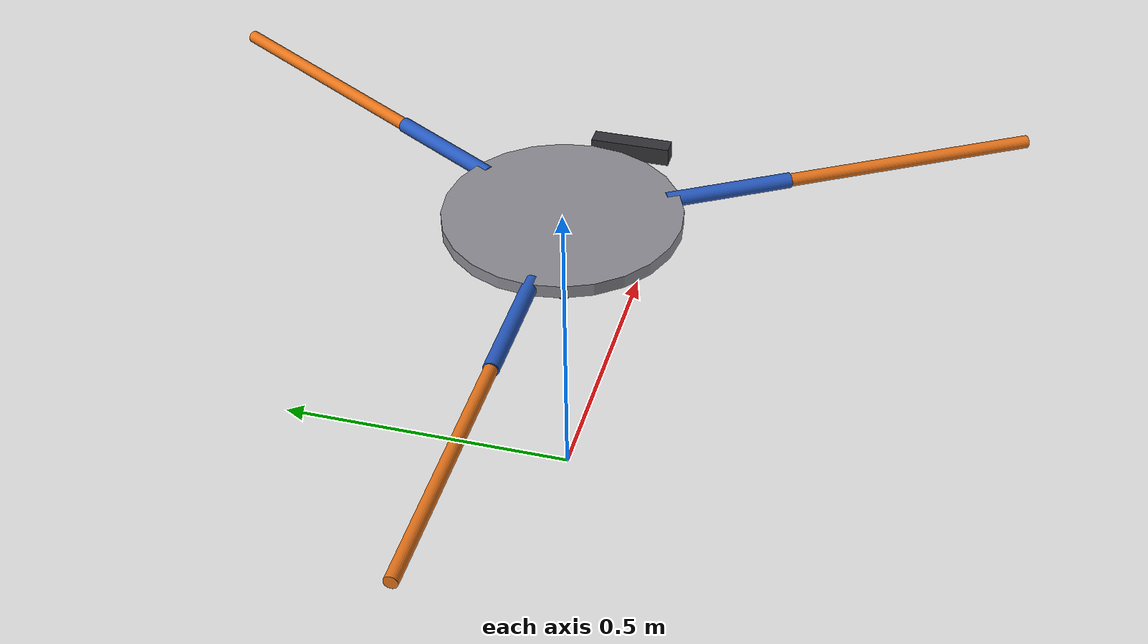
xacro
<?xml version="1.0"?>
<robot name="delta_robot" xmlns:xacro="http://www.ros.org/wiki/xacro">

  <xacro:property name="base_radius" value="0.16321"/>       <!-- base centre -> shoulder axis -->
  <xacro:property name="platform_radius" value="0.035"/>     <!-- platform centre -> forearm attach -->
  <xacro:property name="bicep_length" value="0.200"/>        <!-- shoulder -> elbow -->
  <xacro:property name="forearm_length" value="0.400"/>      <!-- elbow -> platform attach -->
  <xacro:property name="ee_offset" value="0.150"/>           <!-- gripper length below platform, config.EE_OFFSET_Z_MM -->

  <!-- Shoulder joint limits — config.THETA1_MIN/MAX (same range for all 3 arms) -->
  <xacro:property name="theta_min" value="${-5*pi/180.0}"/>
  <xacro:property name="theta_max" value="${90*pi/180.0}"/>

  <!-- Visual-only rod/disk radii — no physical measurement backs these, purely for legibility -->
  <xacro:property name="bicep_vis_r" value="0.012"/>
  <xacro:property name="forearm_vis_r" value="0.010"/>
  <xacro:property name="ee_vis_r" value="0.010"/>

  <material name="grey"><color rgba="0.55 0.55 0.58 1.0"/></material>
  <material name="bicep_blue"><color rgba="0.15 0.35 0.75 1.0"/></material>
  <material name="forearm_orange"><color rgba="0.90 0.45 0.10 1.0"/></material>
  <material name="platform_teal"><color rgba="0.10 0.55 0.50 1.0"/></material>
  <material name="ee_dark"><color rgba="0.20 0.20 0.22 1.0"/></material>

  <!-- Stand height: base_link sits this high above the floor. Visualization-only
       (no physical measurement backs it) — adjust to match the real mounting frame. -->
  <xacro:property name="stand_height" value="0.5"/>

  <!-- Floor frame — RViz's Grid is drawn at the fixed frame's z=0, so use "world"
       as the fixed frame in RViz to see the robot mounted stand_height above the floor. -->
  <link name="world"/>
  <joint name="world_to_base" type="fixed">
    <parent link="world"/>
    <child link="base_link"/>
    <origin xyz="0 0 ${stand_height}" rpy="0 0 0"/>
  </joint>

  <link name="base_link">
    <visual>
      <origin xyz="0 0 0" rpy="0 0 0"/>
      <geometry><cylinder radius="${base_radius + 0.02}" length="0.02"/></geometry>
      <material name="grey"/>
    </visual>
  </link>

  <xacro:macro name="delta_arm" params="idx azimuth_deg">
    <link name="arm${idx}_shoulder_frame"/>
    <joint name="arm${idx}_base_joint" type="fixed">
      <parent link="base_link"/>
      <child link="arm${idx}_shoulder_frame"/>
      <origin xyz="${base_radius*cos(azimuth_deg*pi/180.0)} ${base_radius*sin(azimuth_deg*pi/180.0)} 0"
              rpy="0 0 ${azimuth_deg*pi/180.0}"/>
    </joint>

    <link name="arm${idx}_bicep_link">
      <visual>
        <origin xyz="${bicep_length/2.0} 0 0" rpy="0 1.5707963 0"/>
        <geometry><cylinder radius="${bicep_vis_r}" length="${bicep_length}"/></geometry>
        <material name="bicep_blue"/>
      </visual>
    </link>
    <joint name="arm${idx}_shoulder" type="revolute">
      <parent link="arm${idx}_shoulder_frame"/>
      <child link="arm${idx}_bicep_link"/>
      <origin xyz="0 0 0" rpy="0 0 0"/>
      <axis xyz="0 1 0"/>
      <limit lower="${theta_min}" upper="${theta_max}" effort="50" velocity="3.0"/>
    </joint>

    <link name="arm${idx}_elbow_frame"/>
    <joint name="arm${idx}_elbow_yaw" type="continuous">
      <parent link="arm${idx}_bicep_link"/>
      <child link="arm${idx}_elbow_frame"/>
      <origin xyz="${bicep_length} 0 0" rpy="0 0 0"/>
      <axis xyz="0 0 1"/>
    </joint>

    <link name="arm${idx}_forearm_link">
      <visual>
        <origin xyz="${forearm_length/2.0} 0 0" rpy="0 1.5707963 0"/>
        <geometry><cylinder radius="${forearm_vis_r}" length="${forearm_length}"/></geometry>
        <material name="forearm_orange"/>
      </visual>
    </link>
    <joint name="arm${idx}_elbow_pitch" type="continuous">
      <parent link="arm${idx}_elbow_frame"/>
      <child link="arm${idx}_forearm_link"/>
      <origin xyz="0 0 0" rpy="0 0 0"/>
      <axis xyz="0 1 0"/>
    </joint>
  </xacro:macro>

  <!-- azimuths_deg = (180, 300, 60) — rotated 180deg from the naive (0,120,240)
       to match the physical robot's mounting. MUST match fk_ik.DeltaGeometry. -->
  <xacro:delta_arm idx="1" azimuth_deg="180.0"/>
  <xacro:delta_arm idx="2" azimuth_deg="300.0"/>
  <xacro:delta_arm idx="3" azimuth_deg="60.0"/>

  <link name="platform_x_link"/>
  <joint name="platform_x" type="prismatic">
    <parent link="base_link"/>
    <child link="platform_x_link"/>
    <origin xyz="0 0 0" rpy="0 0 0"/>
    <axis xyz="1 0 0"/>
    <limit lower="-0.3" upper="0.3" effort="0" velocity="1.0"/>
  </joint>

  <link name="platform_y_link"/>
  <joint name="platform_y" type="prismatic">
    <parent link="platform_x_link"/>
    <child link="platform_y_link"/>
    <origin xyz="0 0 0" rpy="0 0 0"/>
    <axis xyz="0 1 0"/>
    <limit lower="-0.3" upper="0.3" effort="0" velocity="1.0"/>
  </joint>

  <link name="platform_link">
    <visual>
      <origin xyz="0 0 0" rpy="0 0 0"/>
      <geometry><cylinder radius="${platform_radius + 0.03}" length="0.015"/></geometry>
      <material name="platform_teal"/>
    </visual>
  </link>
  <joint name="platform_z" type="prismatic">
    <parent link="platform_y_link"/>
    <child link="platform_link"/>
    <origin xyz="0 0 0" rpy="0 0 0"/>
    <axis xyz="0 0 1"/>
    <limit lower="-0.8" upper="0.0" effort="0" velocity="1.0"/>
  </joint>

  <link name="ee_link">
    <visual>
      <origin xyz="0 0 ${-ee_offset/2.0}" rpy="0 0 0"/>
      <geometry><cylinder radius="${ee_vis_r}" length="${ee_offset}"/></geometry>
      <material name="ee_dark"/>
    </visual>
  </link>
  <joint name="ee_joint" type="fixed">
    <parent link="platform_link"/>
    <child link="ee_link"/>
    <origin xyz="0 0 0" rpy="0 0 0"/>
  </joint>

  <link name="camera_link">
    <visual>
      <origin xyz="0 0 0" rpy="0 0 0"/>
      <geometry><box size="0.029 0.124 0.026"/></geometry>
      <material name="ee_dark"/>
    </visual>
  </link>
  <joint name="base_to_camera_link" type="fixed">
    <parent link="base_link"/>
    <child link="camera_link"/>
    <origin xyz="0.207 -0.0562 -0.0003"
            rpy="${pi} ${pi/2} 0"/>
  </joint>

</robot>
